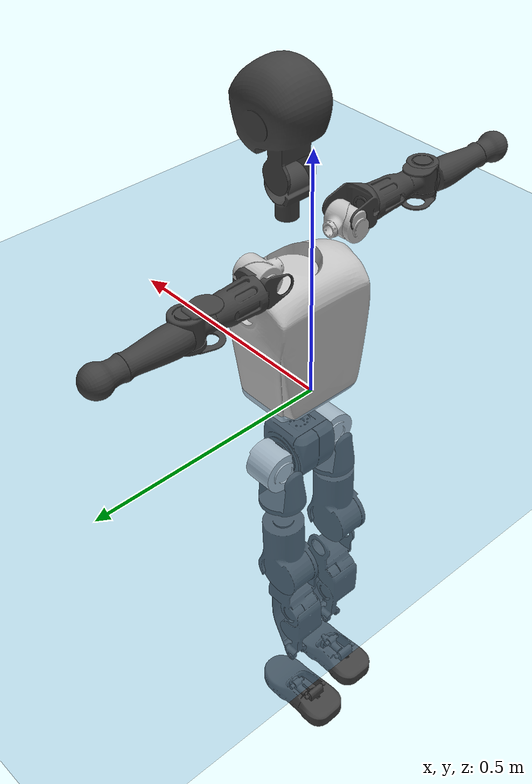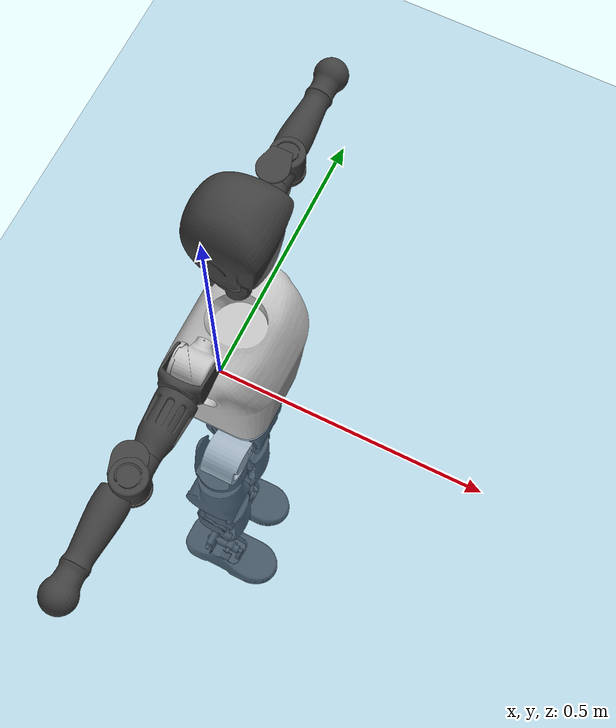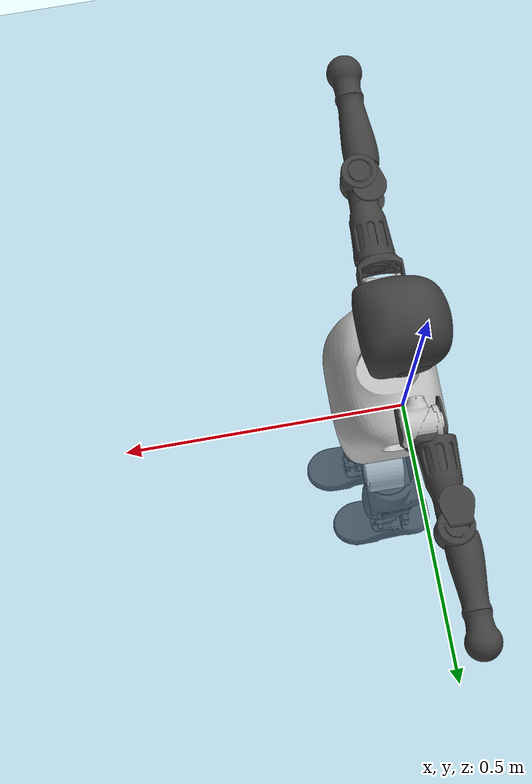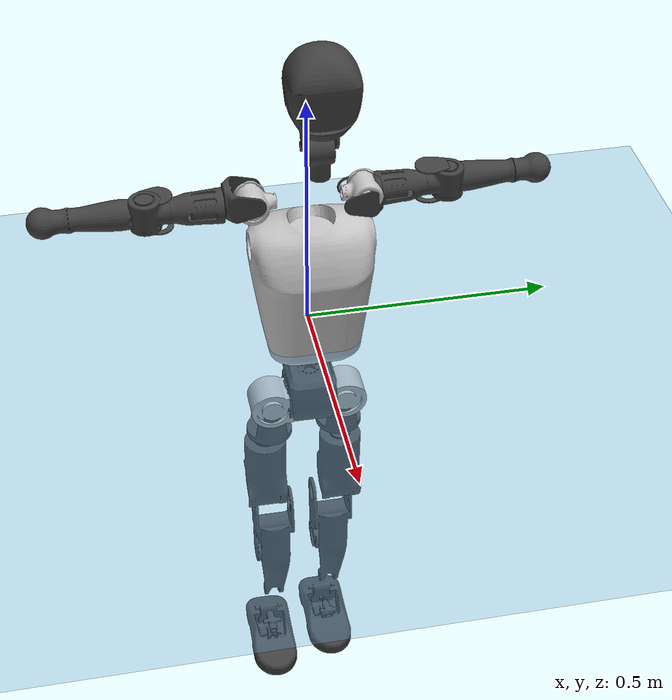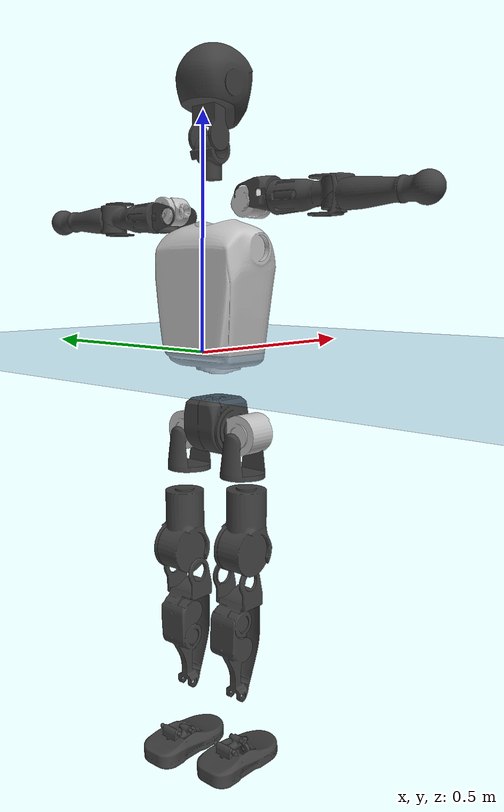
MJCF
<mujoco model="T1">
  <compiler angle="radian" assetdir="assets" balanceinertia="true" inertiafromgeom="false"/>

  <option timestep="0.005" density="1.2" viscosity="2e-05"/>

  <size nkey="1"/>

  <visual>
    <quality shadowsize="8192"/>
    <map shadowclip="0.5"/>
  </visual>

  <default>
    <default class="/">
      <joint armature="0.01" damping="0.01" frictionloss="0.1"/>
      <geom contype="0" conaffinity="0" group="1" solref="-1000 -80"/>
      <site size="0.01 0.005 0.005" group="5"/>
      <general forcelimited="true" biastype="affine" gainprm="25" biasprm="0 -25 -0.6"/>
      <default class="t1">
        <geom rgba="0.25 0.25 0.25 1"/>
        <default class="visual">
          <geom type="mesh" group="2"/>
        </default>
        <default class="collision">
          <geom group="3"/>
        </default>
        <default class="foot">
          <geom size="0.1115 0.05 0.015" type="box" condim="6" group="4" priority="1" solimp="0.015 1 0.015"/>
        </default>
        <default class="reward_collision_sphere">
          <geom group="5" rgba="1 0 0 1"/>
        </default>
      </default>
    </default>
  </default>

  <asset>
    <texture type="skybox" colorspace="auto" name="//unnamed_texture_0" builtin="gradient" rgb1="0.95 0.95 0.95" rgb2="0.95 0.95 0.95" width="100" height="600"/>
    <texture type="2d" colorspace="auto" name="texplane" builtin="checker" rgb1="0.345 0.575 0.748" rgb2="0.345 0.575 0.748" markrgb="1 1 1" width="512" height="512"/>
    <material name="MatPlane" class="/" texture="texplane" texuniform="true" texrepeat="2 2" specular="0.9"/>
    <mesh name="Trunk" class="/" file="Trunk.stl"/>
    <mesh name="H1" class="/" file="H1.stl"/>
    <mesh name="H2" class="/" file="H2.stl"/>
    <mesh name="AL1" class="/" file="AL1.stl"/>
    <mesh name="AL2" class="/" file="AL2.stl"/>
    <mesh name="AL3" class="/" file="AL3.stl"/>
    <mesh name="left_hand_link" class="/" file="left_hand_link.stl"/>
    <mesh name="AR1" class="/" file="AR1.stl"/>
    <mesh name="AR2" class="/" file="AR2.stl"/>
    <mesh name="AR3" class="/" file="AR3.stl"/>
    <mesh name="right_hand_link" class="/" file="right_hand_link.stl"/>
    <mesh name="Waist" class="/" file="Waist.stl"/>
    <mesh name="Hip_Pitch_Left" class="/" file="Hip_Pitch_Left.stl"/>
    <mesh name="Hip_Roll_Left" class="/" file="Hip_Roll_Left.stl"/>
    <mesh name="Hip_Yaw_Left" class="/" file="Hip_Yaw_Left.stl"/>
    <mesh name="Shank_Left" class="/" file="Shank_Left.stl"/>
    <mesh name="Ankle_Cross_Left" class="/" file="Ankle_Cross_Left.stl"/>
    <mesh name="left_foot_link" class="/" file="left_foot_link.stl"/>
    <mesh name="Hip_Pitch_Right" class="/" file="Hip_Pitch_Right.stl"/>
    <mesh name="Hip_Roll_Right" class="/" file="Hip_Roll_Right.stl"/>
    <mesh name="Hip_Yaw_Right" class="/" file="Hip_Yaw_Right.stl"/>
    <mesh name="Shank_Right" class="/" file="Shank_Right.stl"/>
    <mesh name="Ankle_Cross_Right" class="/" file="Ankle_Cross_Right.stl"/>
    <mesh name="right_foot_link" class="/" file="right_foot_link.stl"/>
  </asset>

  <worldbody>
    <geom name="floor" class="/" size="100 100 0.125" type="plane" group="0" material="MatPlane"/>
    <light name="toplight_shadow" class="/" pos="0 0 5" dir="0.0990148 0.0990148 -0.990148" type="directional" ambient="0.04 0.04 0.04" diffuse="0.55 0.55 0.55" specular="0.12 0.12 0.12"/>
    <light name="toplight_fill" class="/" pos="0 0 5" dir="0.0990148 0.0990148 -0.990148" type="directional" castshadow="false" ambient="0.04 0.04 0.04" diffuse="0.3 0.3 0.3" specular="0.08 0.08 0.08"/>
    <body name="trunk" childclass="t1" pos="-0.0118585 -0.000729927 0.001921" quat="0.999996 -0.000520774 7.15374e-06 -0.00273329">
      <inertial pos="0.0328428 -0.00166311 0.159704" quat="0.99915 0.0152061 -0.014056 -0.0356311" mass="8.55638" diaginertia="0.00829074 0.0180531 0.304475"/>
      <joint name="//unnamed_joint_0" type="free" armature="0" damping="0" frictionloss="0"/>
      <geom name="//unnamed_geom_1" class="visual" rgba="0.76 0.76 0.76 1" mesh="Trunk"/>
      <geom name="//unnamed_geom_2" class="collision" size="0.0705132 0.0940176 0.141026" pos="0.0385929 0 0.170776" type="box"/>
      <geom name="//unnamed_geom_3" class="reward_collision_sphere" size="0.10812" pos="0.0385929 0 0.142313"/>
      <geom name="//unnamed_geom_4" class="reward_collision_sphere" size="0.0141026" pos="0.0385929 0.0641053 0"/>
      <geom name="//unnamed_geom_5" class="reward_collision_sphere" size="0.0141026" pos="0.0385929 -0.0641053 0"/>
      <geom name="//unnamed_geom_6" class="reward_collision_sphere" size="0.0141026" pos="0.0385929 0.0806973 0.256164"/>
      <geom name="//unnamed_geom_7" class="reward_collision_sphere" size="0.0141026" pos="0.0385929 -0.0806973 0.256164"/>
      <site name="imu" pos="0.080605 0.0453103 -0.0638553" size="0.00940176"/>
      <camera name="track" pos="0 -1.50836 0" quat="0.707107 0.707107 0 0" mode="trackcom"/>
      <camera name="ego_camera" pos="0.0784722 0 0.597715" quat="-0.5 -0.5 0.5 0.5"/>
      <body name="H1" pos="0.0577611 0.0165417 0.363337" quat="0.999994 -0.0011722 -0.00066197 0.00323308">
        <inertial pos="0.0106363 -0.00116856 0.0914348" quat="0.736166 -0.0708199 0.0449566 0.671583" mass="0.313394" diaginertia="2.63765e-05 6.77585e-05 0.000916495"/>
        <joint name="AAHead_yaw" pos="0 0 0" axis="0.0688262 -0.0383498 0.996891" stiffness="0.00278748" range="-1.51028 1.41574" armature="0.00305298" damping="0.00463676" frictionloss="0.0445382"/>
        <geom name="//unnamed_geom_8" class="visual" mesh="H1"/>
        <body name="H2" pos="-0.0081863 0.00197229 0.0873927" quat="0.999976 -0.00298435 -0.00573492 0.002362">
          <inertial pos="0.0032021 0.0179324 0.142591" quat="0.991792 0.0897834 -0.0498154 -0.0761984" mass="0.47257" diaginertia="0.000270493 0.000500483 0.00957007"/>
          <joint name="Head_pitch" pos="0 0 0" axis="0.000110052 -1 -0.000258732" stiffness="0.0522963" range="-1.36206 0.366652" armature="0.00430247" damping="0" frictionloss="0.0934755"/>
          <geom name="//unnamed_geom_9" class="visual" mesh="H2"/>
          <geom name="//unnamed_geom_10" class="collision" size="0.075214" pos="0.00643215 0 0.156544"/>
          <geom name="//unnamed_geom_11" class="reward_collision_sphere" size="0.0846158" pos="0.0128643 0 0.142313"/>
        </body>
      </body>
      <body name="AL1" pos="0.0282405 0.0647841 0.300412" quat="1 0.000162874 0.000533146 -4.84562e-05">
        <inertial pos="0.0162734 0.0176761 0.0133098" quat="0.507723 0.471515 -0.526629 0.492496" mass="0.335228" diaginertia="0.000112578 0.000237328 0.00152495"/>
        <joint name="Left_Shoulder_Pitch" pos="0 0 0" axis="-0.0495309 0.998194 0.0339955" range="-3.4948 1.22201" armature="0.00446698" damping="0.0141912" frictionloss="0.151448"/>
        <geom name="//unnamed_geom_12" class="visual" rgba="0.76 0.76 0.76 1" mesh="AL1"/>
        <body name="AL2" pos="-0.00366262 0.0209663 -0.0119728" quat="0.999991 0.00069374 -0.00193081 0.00374181">
          <inertial pos="0.00296277 0.0351912 -0.0102991" quat="0.488944 0.512318 -0.486065 0.51206" mass="0.124562" diaginertia="2.94542e-05 5.30858e-05 0.000944552"/>
          <joint name="Left_Shoulder_Roll" pos="0 0 0" axis="-0.99904 -0.0145829 -0.041301" stiffness="0.0300666" range="-1.81135 2.03922" armature="0.00955815" damping="0" frictionloss="0.114342"/>
          <geom name="//unnamed_geom_13" class="visual" mesh="AL2"/>
          <body name="AL3" pos="-0.016054 0.0485618 -0.000604315" quat="0.999984 0.00208566 0.00290859 0.00442538">
            <inertial pos="-4.50291e-06 0.057937 -0.0139245" quat="0.723415 0.687535 0.0166248 0.0607388" mass="0.823701" diaginertia="0.00106612 0.00284751 0.00332427"/>
            <joint name="Left_Elbow_Pitch" pos="0 0 0" axis="0.0138758 -0.999748 -0.017667" stiffness="0.0402235" range="-2.19145 1.98531" armature="0.015904" damping="0.0558437" frictionloss="0.103918"/>
            <geom name="//unnamed_geom_14" class="visual" mesh="AL3"/>
            <geom name="//unnamed_geom_15" class="collision" size="0.0282053 0.0705132" pos="0 0.037709 0" quat="0.707105 0.707108 0 0" type="cylinder"/>
            <geom name="//unnamed_geom_16" class="reward_collision_sphere" size="0.0338463"/>
            <body name="left_hand_link" pos="-0.00826018 0.110762 -0.00103932" quat="0.999978 0.000903519 0.00445654 -0.00474873">
              <inertial pos="-0.0179433 0.0969141 0.00568458" quat="0.699815 0.713213 -0.0239651 0.0317981" mass="0.329451" diaginertia="0.000980046 0.00208456 0.00157851"/>
              <joint name="Left_Elbow_Yaw" pos="0 0 0" axis="-0.000358424 -0.0594195 0.998233" range="-2.64557 0.22338" armature="0.00259225" damping="0" frictionloss="0.0304427"/>
              <geom name="//unnamed_geom_17" class="visual" mesh="left_hand_link"/>
              <geom name="//unnamed_geom_18" class="collision" size="0.0282053 0.0822654" pos="0 0.0980435 0" quat="0.707105 0.707108 0 0" type="cylinder"/>
              <geom name="//unnamed_geom_19" class="reward_collision_sphere" size="0.0470088"/>
              <geom name="//unnamed_geom_20" class="reward_collision_sphere" size="0.0329061" pos="0 0.0829599 0"/>
              <geom name="//unnamed_geom_21" class="reward_collision_sphere" size="0.0329061" pos="0 0.162149 0"/>
            </body>
          </body>
        </body>
      </body>
      <body name="AR1" pos="0.0413543 -0.0648598 0.307789" quat="0.999985 -0.00114503 0.00359197 0.00407677">
        <inertial pos="-0.0102382 -0.0416112 0.000509344" quat="0.502254 0.497431 -0.50388 0.496395" mass="0.464383" diaginertia="0.000166697 0.000321664 0.00177824"/>
        <joint name="Right_Shoulder_Pitch" pos="0 0 0" axis="-0.0171363 -0.999761 -0.0136003" range="-1.2823 3.15799" armature="0.00428258" damping="0.0902136" frictionloss="0.145114"/>
        <geom name="//unnamed_geom_22" class="visual" rgba="0.76 0.76 0.76 1" mesh="AR1"/>
        <body name="AR2" pos="0.00381023 -0.0446924 0.0155982" quat="0.999996 -0.000598093 0.00232022 -0.00132441">
          <inertial pos="0.013219 -0.0419382 0.0167138" quat="0.513177 0.499395 -0.496747 0.490406" mass="0.110539" diaginertia="3.74045e-05 8.64857e-05 0.000778444"/>
          <joint name="Right_Shoulder_Roll" pos="0 0 0" axis="-0.998973 0.0111387 0.043928" stiffness="0.0733563" range="-2.08138 1.67034" armature="0.00544361" damping="0" frictionloss="0.107155"/>
          <geom name="//unnamed_geom_23" class="visual" mesh="AR2"/>
          <body name="AR3" pos="0.00287271 -0.057281 -0.00772039" quat="0.999999 0.000644363 -0.000625136 -0.00109617">
            <inertial pos="0.0157582 -0.0725892 0.00351013" quat="0.673041 0.739332 -0.0198973 0.00299011" mass="0.833748" diaginertia="0.0015016 0.0031041 0.00285891"/>
            <joint name="Right_Elbow_Pitch" pos="0 0 0" axis="-0.0418231 0.998718 0.0285169" stiffness="0.0682964" range="-2.25283 2.50237" armature="0.0100202" damping="0.0333399" frictionloss="0.168948"/>
            <geom name="//unnamed_geom_24" class="visual" mesh="AR3"/>
            <geom name="//unnamed_geom_25" class="collision" size="0.0282053 0.0705132" pos="0 -0.037709 0" quat="0.707105 0.707108 0 0" type="cylinder"/>
            <geom name="//unnamed_geom_26" class="reward_collision_sphere" size="0.0338463"/>
            <body name="right_hand_link" pos="-0.0116393 -0.121778 -0.00573131" quat="0.999999 -0.000518614 0.00103439 -0.000189587">
              <inertial pos="-0.00368076 -0.0767385 -0.0136834" quat="0.708347 0.705862 0.00172481 0.000648741" mass="0.294507" diaginertia="0.000878659 0.00249897 0.00148582"/>
              <joint name="Right_Elbow_Yaw" pos="0 0 0" axis="-0.00590564 -0.0155062 0.999862" range="-0.224281 2.60195" armature="0.00947724" damping="0.0449429" frictionloss="0.166192"/>
              <geom name="//unnamed_geom_27" class="visual" mesh="right_hand_link"/>
              <geom name="//unnamed_geom_28" class="collision" size="0.0282053 0.0822654" pos="0 -0.0980435 0" quat="0.707105 0.707108 0 0" type="cylinder"/>
              <geom name="//unnamed_geom_29" class="reward_collision_sphere" size="0.0470088"/>
              <geom name="//unnamed_geom_30" class="reward_collision_sphere" size="0.0329061" pos="0 -0.0829599 0"/>
              <geom name="//unnamed_geom_31" class="reward_collision_sphere" size="0.0329061" pos="0 -0.162149 0"/>
            </body>
          </body>
        </body>
      </body>
      <body name="Waist" pos="0.0511294 -0.00370443 -0.17129" quat="0.999994 -0.00293829 0.000262876 -0.00201334">
        <inertial pos="0.0022369 0.00156632 0.0134642" quat="0.975887 0.00344536 -0.215064 -0.0371501" mass="2.44516" diaginertia="0.000455318 0.00117703 0.0212897"/>
        <joint name="Waist" pos="0 0 0" axis="0.0379478 0.0563981 0.997687" stiffness="0.00787539" range="-1.34828 1.78937" armature="0.00881812" damping="0.0142402" frictionloss="0.165819"/>
        <geom name="//unnamed_geom_32" class="visual" mesh="Waist"/>
        <body name="Hip_Pitch_Left" pos="-0.00127004 0.0726292 0.00735086" quat="0.999999 -0.00045691 0.000608674 0.000770928">
          <inertial pos="0.00606564 0.00815451 -0.0340892" quat="0.969366 0.238592 0.0534528 -0.023378" mass="0.878208" diaginertia="0.000235808 0.000307909 0.00612519"/>
          <joint name="Left_Hip_Pitch" pos="0 0 0" axis="0.0247001 0.999695 0.000560129" range="-1.64284 1.56222" armature="0.0042675" damping="0" frictionloss="0.0918381"/>
          <geom name="//unnamed_geom_33" class="visual" rgba="0.76 0.76 0.76 1" mesh="Hip_Pitch_Left"/>
          <body name="Hip_Roll_Left" pos="-0.0156509 -0.00645017 -0.0335449" quat="0.999973 -0.00191482 0.0049126 0.00507861">
            <inertial pos="-0.0111668 -0.00236471 -0.0757019" quat="0.706582 -0.00597801 0.00701799 0.707572" mass="0.452932" diaginertia="0.000282053 0.00044624 0.00339252"/>
            <joint name="Left_Hip_Roll" pos="0 0 0" axis="-0.997436 -0.0425418 0.0575484" range="-1.89211 0.27555" armature="0.0148503" damping="0.0565622" frictionloss="0.135345"/>
            <geom name="//unnamed_geom_34" class="visual" mesh="Hip_Roll_Left"/>
            <geom name="//unnamed_geom_35" class="reward_collision_sphere" size="0.0517097"/>
            <body name="Hip_Yaw_Left" pos="-0.0107421 0.00752688 -0.127283" quat="0.999973 -0.00243971 -0.00632298 0.00294355">
              <inertial pos="0.011771 0.00657937 -0.119379" quat="0.684258 -0.0523054 -0.00948267 0.7273" mass="1.98147" diaginertia="0.00241598 0.00638476 0.0154599"/>
              <joint name="Left_Hip_Yaw" pos="0 0 0" axis="-0.0339735 0.0118633 -0.999352" stiffness="0.0758318" range="-1.33949 0.708635" armature="0.00933328" damping="0" frictionloss="0.0285017"/>
              <geom name="//unnamed_geom_36" class="visual" mesh="Hip_Yaw_Left"/>
              <geom name="//unnamed_geom_37" class="collision" size="0.0470088 0.075214" type="cylinder"/>
              <body name="Shank_Left" pos="-0.014991 -0.0157469 -0.182473" quat="1 0.000155383 -0.000677193 0.000370007">
                <inertial pos="0.013044 -0.00709804 -0.184547" quat="0.99862 -0.0463612 -0.024262 -0.00442762" mass="1.59045" diaginertia="0.00367609 0.00636656 0.00893935"/>
                <joint name="Left_Knee_Pitch" pos="0 0 0" axis="0.0256767 0.997656 0.0634362" stiffness="0.0225531" range="-0.0330676 2.07657" armature="0.015416" damping="0" frictionloss="0.0178092"/>
                <geom name="//unnamed_geom_38" class="visual" mesh="Shank_Left"/>
                <geom name="//unnamed_geom_39" class="collision" size="0.0470088 0.0705132" pos="0 0 -0.170776" type="cylinder"/>
                <geom name="//unnamed_geom_40" class="reward_collision_sphere" size="0.0611114"/>
                <body name="Ankle_Cross_Left" pos="-0.00348877 0.00423782 -0.407792" quat="0.999998 -0.00146056 0.00161697 -0.000206064">
                  <inertial pos="-0.00351796 -0.00618858 -0.00730513" quat="0.441869 0.535366 0.564492 0.446636" mass="0.0528506" diaginertia="2.4402e-06 5.40885e-06 5.32528e-05"/>
                  <joint name="Left_Ankle_Pitch" pos="0 0 0" axis="-0.0402546 0.997949 0.049772" stiffness="0.041686" range="-0.871973 0.590883" armature="0.00171829" damping="0.0374216" frictionloss="0.138466"/>
                  <geom name="//unnamed_geom_41" class="visual" mesh="Ankle_Cross_Left"/>
                  <body name="left_foot_link" pos="-0.0171312 -0.00556575 -0.00791148" quat="1 2.46902e-05 5.85874e-05 3.93471e-05">
                    <inertial pos="0.0159102 -0.0118621 -0.0137823" quat="0.00473958 0.636804 -0.0117742 0.770921" mass="0.578087" diaginertia="0.00029051 0.000506167 0.0142783"/>
                    <joint name="Left_Ankle_Roll" pos="0 0 0" axis="-0.99997 -0.00242328 0.00730648" range="-0.660743 0.638592" armature="0.00900875" damping="0.0935437" frictionloss="0.117223"/>
                    <geom name="//unnamed_geom_42" class="visual" mesh="left_foot_link"/>
                    <geom name="left_foot" class="foot" size="0.146386 0.0729265 0.0197463" pos="0.00643215 0 -0.021347"/>
                    <geom name="//unnamed_geom_44" class="reward_collision_sphere" size="0.0488891" pos="0.00643215 0 -0.021347"/>
                    <geom name="//unnamed_geom_45" class="reward_collision_sphere" size="0.0282053" pos="0.0611054 -0.0173462 -0.021347"/>
                    <geom name="//unnamed_geom_46" class="reward_collision_sphere" size="0.0282053" pos="-0.045025 -0.0173462 -0.021347"/>
                    <site name="left_foot" class="foot" pos="0.00643215 0 -0.021347" size="0.00940176"/>
                  </body>
                </body>
              </body>
            </body>
          </body>
        </body>
        <body name="Hip_Pitch_Right" pos="0.0115033 -0.0840181 0.011881" quat="0.999996 -0.00190704 0.00202035 0.000382231">
          <inertial pos="0.00545338 0.00573042 -0.0111812" quat="0.966778 -0.252213 0.0415661 -0.000726969" mass="0.79729" diaginertia="0.000238515 0.000285833 0.00638141"/>
          <joint name="Right_Hip_Pitch" pos="0 0 0" axis="-0.0275544 -0.99894 -0.0368742" stiffness="0.0451561" range="-1.21192 1.46978" armature="0.00863438" damping="0" frictionloss="0.168674"/>
          <geom name="//unnamed_geom_47" class="visual" rgba="0.76 0.76 0.76 1" mesh="Hip_Pitch_Right"/>
          <body name="Hip_Roll_Right" pos="-0.0159872 -0.00107843 -0.0361698" quat="1 -6.24251e-05 -2.21562e-05 -9.39143e-07">
            <inertial pos="0.00818846 0.0133072 -0.0900221" quat="0.731767 -0.0115321 -0.0139465 0.681315" mass="0.37134" diaginertia="0.000226226 0.000481212 0.00283842"/>
            <joint name="Right_Hip_Roll" pos="0 0 0" axis="-0.996842 0.0528305 -0.0592807" stiffness="0.0238725" range="-0.222081 1.69612" armature="0.015392" damping="0.010231" frictionloss="0.0666201"/>
            <geom name="//unnamed_geom_48" class="visual" mesh="Hip_Roll_Right"/>
            <geom name="//unnamed_geom_49" class="reward_collision_sphere" size="0.0517097"/>
            <body name="Hip_Yaw_Right" pos="-0.000439931 -0.0091357 -0.102744" quat="0.999994 0.000816853 -0.00261225 0.00206453">
              <inertial pos="-0.014797 -0.0154859 -0.115797" quat="0.766897 -0.0613939 -0.050404 0.636836" mass="1.77218" diaginertia="0.00273775 0.00689267 0.0178517"/>
              <joint name="Right_Hip_Yaw" pos="0 0 0" axis="0.000224889 0.0006936 -1" range="-0.854593 0.863814" armature="0.0114677" damping="0.035226" frictionloss="0.0950033"/>
              <geom name="//unnamed_geom_50" class="visual" mesh="Hip_Yaw_Right"/>
              <geom name="//unnamed_geom_51" class="collision" size="0.0470088 0.075214" type="cylinder"/>
              <body name="Shank_Right" pos="-0.0149194 0.0158137 -0.204339" quat="1 -4.0896e-05 -4.9396e-05 -7.80494e-06">
                <inertial pos="0.0128208 -0.0178492 -0.164906" quat="0.998087 -0.0419931 0.0310548 -0.0330904" mass="1.14669" diaginertia="0.00425577 0.00922912 0.0120251"/>
                <joint name="Right_Knee_Pitch" pos="0 0 0" axis="0.00797796 -0.999677 0.0241189" stiffness="0.000626869" range="-2.13273 -0.0633523" armature="0.00869677" damping="0" frictionloss="0.138541"/>
                <geom name="//unnamed_geom_52" class="visual" mesh="Shank_Right"/>
                <geom name="//unnamed_geom_53" class="collision" size="0.0470088 0.0705132" pos="0 0 -0.170776" type="cylinder"/>
                <geom name="//unnamed_geom_54" class="reward_collision_sphere" size="0.0611114"/>
                <body name="Ankle_Cross_Right" pos="-0.000811216 -0.00421558 -0.392086" quat="0.999999 -0.000817895 4.04248e-05 -0.0014359">
                  <inertial pos="0.00472387 0.0143303 -0.0185477" quat="0.48813 0.49049 0.545466 0.472881" mass="0.0572035" diaginertia="3.03735e-06 9.01773e-06 8.11455e-05"/>
                  <joint name="Right_Ankle_Pitch" pos="0 0 0" axis="-0.044577 -0.997946 -0.0460099" range="-0.549467 0.853493" armature="0.0030751" damping="0.0857558" frictionloss="0.105174"/>
                  <geom name="//unnamed_geom_55" class="visual" mesh="Ankle_Cross_Right"/>
                  <body name="right_foot_link" pos="-0.00420184 -0.00246829 -0.0322616" quat="1 5.54852e-05 -0.000200121 3.77029e-05">
                    <inertial pos="0.0064372 -0.00850642 -0.0279681" quat="0.0246488 0.658856 0.00614768 0.75184" mass="0.61719" diaginertia="0.000244816 0.000529103 0.013321"/>
                    <joint name="Right_Ankle_Roll" pos="0 0 0" axis="-0.999931 0.00680868 0.00958373" stiffness="0.00889386" range="-0.389728 0.670241" armature="0.012677" damping="0.0270185" frictionloss="0.150161"/>
                    <geom name="//unnamed_geom_56" class="visual" mesh="right_foot_link"/>
                    <geom name="right_foot" class="foot" size="0.0880226 0.0412109 0.00972691" pos="0.00643215 0 -0.021347"/>
                    <geom name="//unnamed_geom_58" class="reward_collision_sphere" size="0.037607"/>
                    <geom name="//unnamed_geom_59" class="reward_collision_sphere" size="0.0282053" pos="0.00643215 0 -0.021347"/>
                    <geom name="//unnamed_geom_60" class="reward_collision_sphere" size="0.0282053" pos="0.0611054 0.0173462 -0.021347"/>
                    <geom name="//unnamed_geom_61" class="reward_collision_sphere" size="0.0282053" pos="-0.045025 0.0173462 -0.021347"/>
                    <site name="right_foot" class="foot" pos="0.00643215 0 -0.021347" size="0.00940176"/>
                  </body>
                </body>
              </body>
            </body>
          </body>
        </body>
      </body>
    </body>
  </worldbody>

  <contact>
    <pair class="/" geom1="floor" geom2="left_foot" name="//unnamed_contact_0"/>
    <pair class="/" geom1="floor" geom2="right_foot" name="//unnamed_contact_1"/>
  </contact>

  <actuator>
    <general name="AAHead_yaw" class="/" joint="AAHead_yaw" forcerange="-3.5502 3.5502" gainprm="18.5331" biasprm="0 -18.5331 -0.758956"/>
    <general name="Head_pitch" class="/" joint="Head_pitch" forcerange="-5.13842 5.13842" gainprm="18.5331" biasprm="0 -18.5331 -0.758956"/>
    <general name="Left_Shoulder_Pitch" class="/" joint="Left_Shoulder_Pitch" forcerange="-14.7668 14.7668" gainprm="18.5331" biasprm="0 -18.5331 -0.758956"/>
    <general name="Left_Shoulder_Roll" class="/" joint="Left_Shoulder_Roll" forcerange="-18.6973 18.6973" gainprm="18.5331" biasprm="0 -18.5331 -0.758956"/>
    <general name="Left_Elbow_Pitch" class="/" joint="Left_Elbow_Pitch" forcerange="-8.8015 8.8015" gainprm="18.5331" biasprm="0 -18.5331 -0.758956"/>
    <general name="Left_Elbow_Yaw" class="/" joint="Left_Elbow_Yaw" forcerange="-10.1902 10.1902" gainprm="18.5331" biasprm="0 -18.5331 -0.758956"/>
    <general name="Right_Shoulder_Pitch" class="/" joint="Right_Shoulder_Pitch" forcerange="-22.7964 22.7964" gainprm="18.5331" biasprm="0 -18.5331 -0.758956"/>
    <general name="Right_Shoulder_Roll" class="/" joint="Right_Shoulder_Roll" forcerange="-21.137 21.137" gainprm="18.5331" biasprm="0 -18.5331 -0.758956"/>
    <general name="Right_Elbow_Pitch" class="/" joint="Right_Elbow_Pitch" forcerange="-16.9912 16.9912" gainprm="18.5331" biasprm="0 -18.5331 -0.758956"/>
    <general name="Right_Elbow_Yaw" class="/" joint="Right_Elbow_Yaw" forcerange="-12.6553 12.6553" gainprm="18.5331" biasprm="0 -18.5331 -0.758956"/>
    <general name="Waist" class="/" joint="Waist" forcerange="-34.2309 34.2309" gainprm="18.5331" biasprm="0 -18.5331 -0.758956"/>
    <general name="Left_Hip_Pitch" class="/" joint="Left_Hip_Pitch" forcerange="-43.0727 43.0727" gainprm="18.5331" biasprm="0 -18.5331 -0.758956"/>
    <general name="Left_Hip_Roll" class="/" joint="Left_Hip_Roll" forcerange="-22.3397 22.3397" gainprm="18.5331" biasprm="0 -18.5331 -0.758956"/>
    <general name="Left_Hip_Yaw" class="/" joint="Left_Hip_Yaw" forcerange="-41.9445 41.9445" gainprm="18.5331" biasprm="0 -18.5331 -0.758956"/>
    <general name="Left_Knee_Pitch" class="/" joint="Left_Knee_Pitch" forcerange="-35.4041 35.4041" gainprm="18.5331" biasprm="0 -18.5331 -0.758956"/>
    <general name="Left_Ankle_Pitch" class="/" joint="Left_Ankle_Pitch" forcerange="-25.9779 25.9779" gainprm="18.5331" biasprm="0 -18.5331 -0.758956"/>
    <general name="Left_Ankle_Roll" class="/" joint="Left_Ankle_Roll" forcerange="-15.544 15.544" gainprm="18.5331" biasprm="0 -18.5331 -0.758956"/>
    <general name="Right_Hip_Pitch" class="/" joint="Right_Hip_Pitch" forcerange="-48.4159 48.4159" gainprm="18.5331" biasprm="0 -18.5331 -0.758956"/>
    <general name="Right_Hip_Roll" class="/" joint="Right_Hip_Roll" forcerange="-33.8033 33.8033" gainprm="18.5331" biasprm="0 -18.5331 -0.758956"/>
    <general name="Right_Hip_Yaw" class="/" joint="Right_Hip_Yaw" forcerange="-36.5984 36.5984" gainprm="18.5331" biasprm="0 -18.5331 -0.758956"/>
    <general name="Right_Knee_Pitch" class="/" joint="Right_Knee_Pitch" forcerange="-84.419 84.419" gainprm="18.5331" biasprm="0 -18.5331 -0.758956"/>
    <general name="Right_Ankle_Pitch" class="/" joint="Right_Ankle_Pitch" forcerange="-29.2574 29.2574" gainprm="18.5331" biasprm="0 -18.5331 -0.758956"/>
    <general name="Right_Ankle_Roll" class="/" joint="Right_Ankle_Roll" forcerange="-9.98571 9.98571" gainprm="18.5331" biasprm="0 -18.5331 -0.758956"/>
  </actuator>

  <sensor>
    <gyro site="imu" name="imu_angular_velocity"/>
    <velocimeter site="imu" name="imu_linear_velocity"/>
    <framelinvel objtype="site" objname="left_foot" name="left_foot_global_linear_velocity"/>
    <framelinvel objtype="site" objname="right_foot" name="right_foot_global_linear_velocity"/>
  </sensor>

  <keyframe>
    <key name="home" qpos="0 0 0.6385 1 0 0 0 0 0 0 1.4 0 -0.4 0 -1.4 0 0.4 0 -0.4 0 0 0.8 -0.4 0 0.4 0 0 -0.8 0.4 0"/>
  </keyframe>
</mujoco>
